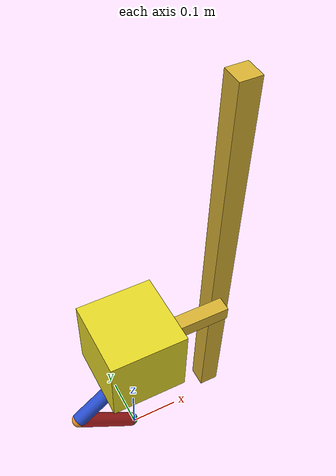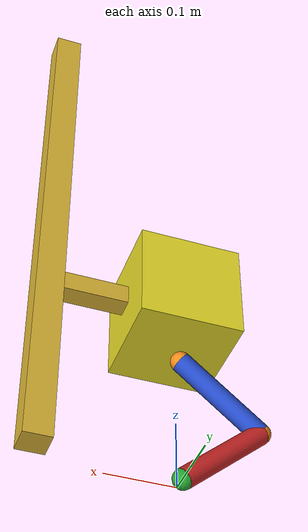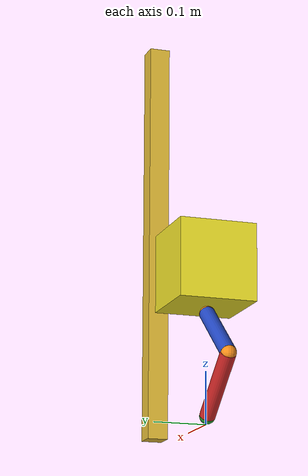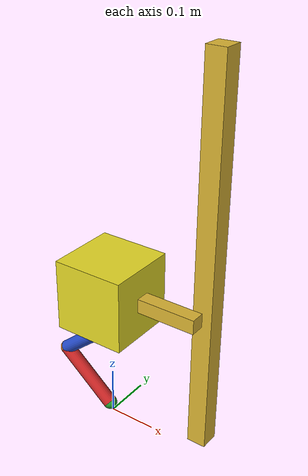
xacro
<?xml version="1.0"?>
<!--full-->
<robot name="my_robot" xmlns:xacro="http://ros.org/wiki/xacro">

  <xacro:property name="pi" value="3.1415926535897931" />
  <xacro:property name="theta1" value="40" />

  <link name="world"/>

  <joint name="base_joint" type="fixed">
    <parent link="world"/>
    <child link="base_link"/>
  </joint>

  <link name="base_link">
    <inertial>
      <mass value="10"/>
      <origin xyz="0.2 0.035 0.4" rpy="0 0 0"/>
      <inertia ixx="1.0" ixy="0.0" ixz="0.0" iyy="1.0" iyz="0.0" izz="1.0"/>
    </inertial>
    <visual>
      <origin xyz="0.2 0.035 0.4" rpy="0 0 0"/>
      <geometry>
        <box size="0.04 0.04 0.8"/>
      </geometry>
    </visual>
    <collision>
      <origin xyz="0.2 0.035 0.4" rpy="0 0 0"/>
      <geometry>
        <box size="0.04 0.04 0.8"/>
      </geometry>
    </collision>
  </link>
  <gazebo reference="base_link">
    <selfCollide>true</selfCollide>
    <material>Gazebo/Gold</material>
  </gazebo>

  <joint name="guide_joint" type="prismatic">
    <parent link="base_link"/>
    <child link="guide_link"/>
    <limit upper="0.5" lower="0.0" effort="0" velocity="100"/>
    <origin xyz="0.2 0 ${0.15*2*sin(radians(theta1))+0.03+0.075}" rpy="0 ${-90*pi/180} 0"/>
    <dynamics damping="0.1"/>
  </joint>
  <transmission name="guide_trans">
    <type>transmission_interface/SimpleTransmission</type>
    <joint name="guide_joint">
      <hardwareInterface>hardware_interface/EffortJointInterface</hardwareInterface>
    </joint>
    <actuator name="guide_motor">
       <hardwareInterface>hardware_interface/EffortJointInterface</hardwareInterface>
       <mechanismReduction>1</mechanismReduction>
    </actuator>
  </transmission>
  <gazebo reference="guide_joint">
    <provideFeedback>true</provideFeedback>
    <turnGravityOff>false</turnGravityOff>
  </gazebo>

  <link name="guide_link">
    <inertial>
      <mass value="0.001"/>
      <origin xyz="0 0 0.0625" rpy="0 ${90*pi/180} 0"/>
      <inertia ixx="0.001" ixy="0.0" ixz="0.0" iyy="0.001" iyz="0.0" izz="0.001"/>
    </inertial>
    <visual>
      <origin xyz="0 0 0.0625" rpy="0 ${90*pi/180} 0"/>
      <geometry>
        <box size="0.125 0.03 0.03"/>
      </geometry>
    </visual>
    <collision>
      <origin xyz="0 0 0.0625" rpy="0 ${90*pi/180} 0"/>
      <geometry>
        <box size="0.125 0.03 0.03"/>
      </geometry>
    </collision>
  </link>
  <gazebo reference="guide_link">
    <selfCollide>true</selfCollide>
    <material>Gazebo/Gold</material>
  </gazebo>

  <joint name="hashida_joint" type="fixed">
    <parent link="guide_link"/>
    <child link="hashida_box"/>
  </joint>

  <link name="hashida_box">
    <inertial>
      <mass value="5.5"/>
      <origin xyz="0 0 0.2" rpy="0 0 0"/>
      <inertia ixx="1.0" ixy="0.0" ixz="0.0" iyy="1.0" iyz="0.0" izz="1.0"/>
    </inertial>
    <visual>
      <origin xyz="0 0 0.2" rpy="0 0 0"/>
      <geometry>
        <box size="0.15 0.15 0.15"/>
      </geometry>
    </visual>
    <collision>
      <origin xyz="0 0 0.2" rpy="0 0 0"/>
      <geometry>
        <box size="0.15 0.15 0.15"/>
      </geometry>
    </collision>
  </link>
  <gazebo reference="hashida_box">
    <selfCollide>true</selfCollide>
    <material>Gazebo/Yellow</material>
  </gazebo>

  <joint name="arm2_roll_link_joint" type="fixed">
    <parent link="hashida_box"/>
    <child link="arm2_roll_link"/>
  </joint>

  <link name="arm2_roll_link">
    <inertial>
      <mass value="0.001"/>
      <origin xyz="-0.09 0 0.208819" rpy="0 0 0"/>
      <inertia ixx="0.001" ixy="0.0" ixz="0.0" iyy="0.001" iyz="0.0" izz="0.001"/>
    </inertial>
    <visual>
      <origin xyz="-0.09 0 0.208819" rpy="0 0 0"/>
      <geometry>
        <sphere radius="0.015"/>
      </geometry>
    </visual>
    <collision>
      <origin xyz="-0.09 0 0.208819" rpy="0 0 0"/>
      <geometry>
        <sphere radius="0.015"/>
      </geometry>
    </collision>
  </link>
  <gazebo reference="arm2_roll_link">
    <material>Gazebo/Orange</material>
  </gazebo>

  <joint name="arm2_roll_joint" type="revolute">
    <parent link="arm2_roll_link"/>
    <child link="arm2_pitch_link"/>
    <limit upper="${0*pi/180}" lower="${-0*pi/180}" effort="100" velocity="100"/>
    <axis xyz="0 0 1"/>
    <origin xyz="-0.09 0 0.208819" rpy="0 0 0"/>
    <dynamics damping="0.1"/>
  </joint>
  <transmission name="arm2_roll_trans">
    <type>transmission_interface/SimpleTransmission</type>
    <joint name="arm2_roll_joint">
      <hardwareInterface>hardware_interface/EffortJointInterface</hardwareInterface>
    </joint>
    <actuator name="arm2_roll_motor">
       <hardwareInterface>hardware_interface/EffortJointInterface</hardwareInterface>
       <mechanismReduction>1</mechanismReduction>
    </actuator>
  </transmission>
  <gazebo reference="arm2_roll_joint">
    <provideFeedback>true</provideFeedback>
    <turnGravityOff>false</turnGravityOff>
  </gazebo>

  <link name="arm2_pitch_link">
    <inertial>
      <mass value="0.001"/>
      <origin xyz="0 0 0" rpy="0 0 0"/>
      <inertia ixx="0.001" ixy="0.0" ixz="0.0" iyy="0.001" iyz="0.0" izz="0.001"/>
    </inertial>
    <visual>
      <origin xyz="0 0 0" rpy="0 0 0"/>
      <geometry>
        <sphere radius="0.015"/>
      </geometry>
    </visual>
    <collision>
      <origin xyz="0 0 0" rpy="0 0 0"/>
      <geometry>
        <sphere radius="0.015"/>
      </geometry>
    </collision>
  </link>
  <gazebo reference="arm2_pitch_link">
    <material>Gazebo/Orange</material>
  </gazebo>

  <joint name="arm2_pitch_joint" type="revolute">
    <parent link="arm2_pitch_link"/>
    <child link="arm2_link"/>
    <limit upper="0.0" lower="${-40*pi/180}" effort="100" velocity="100"/>
    <axis xyz="0 1 0"/>
    <origin xyz="0 0 0" rpy="0 0 0"/>
    <dynamics damping="0.1"/>
  </joint>
  <transmission name="arm2_pitch_trans">
    <type>transmission_interface/SimpleTransmission</type>
    <joint name="arm2_pitch_joint">
      <hardwareInterface>hardware_interface/EffortJointInterface</hardwareInterface>
    </joint>
    <actuator name="arm2_pitch_motor">
       <hardwareInterface>hardware_interface/EffortJointInterface</hardwareInterface>
       <mechanismReduction>1</mechanismReduction>
    </actuator>
  </transmission>
  <gazebo reference="arm2_pitch_joint">
    <provideFeedback>true</provideFeedback>
    <turnGravityOff>false</turnGravityOff>
  </gazebo>

  <link name="arm2_link">
    <inertial>
      <mass value="0.65"/>
      <origin xyz="-${0.15*0.5*sin(radians(theta1))} 0 ${0.15*0.5*cos(radians(theta1))}" rpy="0 -${theta1*pi/180} 0"/>
      <inertia ixx="0.01" ixy="0.0" ixz="0.0" iyy="0.01" iyz="0.0" izz="0.01"/>
    </inertial>
    <visual>
      <origin xyz="-${0.15*0.5*sin(radians(theta1))} 0 ${0.15*0.5*cos(radians(theta1))}" rpy="0 -${theta1*pi/180} 0"/>
      <geometry>
        <cylinder length="0.15" radius="0.015"/>
      </geometry>
    </visual>
    <collision>
      <origin xyz="-${0.15*0.5*sin(radians(theta1))} 0 ${0.15*0.5*cos(radians(theta1))}" rpy="0 -${theta1*pi/180} 0"/>
      <geometry>
        <cylinder length="0.15" radius="0.015"/>
      </geometry>
    </collision>
  </link>
  <gazebo reference="arm2_link">
    <material>Gazebo/Blue</material>
  </gazebo>

  <joint name="arm1_joint" type="revolute">
    <parent link="arm2_link"/>
    <child link="arm1_joint_link"/>
    <limit upper="${80*pi/180}" lower="0.0" effort="100" velocity="100"/>
    <axis xyz="0 1 0"/>
    <origin xyz="-${0.15*sin(radians(theta1))} 0 ${0.15*cos(radians(theta1))}" rpy="0 0 0"/>
    <dynamics damping="0.1"/>
  </joint>
  <transmission name="arm1_trans">
    <type>transmission_interface/SimpleTransmission</type>
    <joint name="arm1_joint">
      <hardwareInterface>hardware_interface/EffortJointInterface</hardwareInterface>
    </joint>
    <actuator name="arm1_motor">
       <hardwareInterface>hardware_interface/EffortJointInterface</hardwareInterface>
       <mechanismReduction>1</mechanismReduction>
    </actuator>
  </transmission>
  <gazebo reference="arm1_joint">
    <provideFeedback>true</provideFeedback>
    <turnGravityOff>false</turnGravityOff>
  </gazebo>

  <link name="arm1_joint_link">
    <inertial>
      <origin xyz="0 0 0" rpy="${90*pi/180} 0 0"/>
      <mass value="0.001"/>
      <inertia ixx="0.001" ixy="0.0" ixz="0.0" iyy="0.001" iyz="0.0" izz="0.001"/>
    </inertial>
    <visual>
      <origin xyz="0 0 0" rpy="${90*pi/180} 0 0"/>
      <geometry>
        <sphere radius="0.015"/>
      </geometry>
    </visual>
    <collision>
      <origin xyz="0 0 0" rpy="${90*pi/180} 0 0 "/>
      <geometry>
        <sphere radius="0.015"/>
      </geometry>
    </collision>
  </link>
  <gazebo reference="arm1_joint_link">
    <material>Gazebo/Orange</material>
  </gazebo>

  <joint name="arm1_joint_link_joint" type="fixed">
    <parent link="arm1_joint_link"/>
    <child link="arm1_link"/>
  </joint>

  <link name="arm1_link">
    <inertial>
      <origin xyz="-${0.15*0.5*sin(radians(theta1))} 0 -${0.15*0.5*cos(radians(theta1))}" rpy="0 ${theta1*pi/180} 0"/>
      <mass value="0.172"/>
      <inertia ixx="0.01" ixy="0.0" ixz="0.0" iyy="0.01" iyz="0.0" izz="0.01"/>
    </inertial>
    <visual>
      <origin xyz="-${0.15*0.5*sin(radians(theta1))} 0 -${0.15*0.5*cos(radians(theta1))}" rpy="0 ${theta1*pi/180} 0"/>
      <geometry>
        <cylinder length="0.15" radius="0.015"/>
      </geometry>
    </visual>
    <collision>
      <origin xyz="-${0.15*0.5*sin(radians(theta1))} 0 -${0.15*0.5*cos(radians(theta1))}" rpy="0 ${theta1*pi/180} 0"/>
      <geometry>
        <cylinder length="0.15" radius="0.015"/>
      </geometry>
    </collision>
  </link>
  <gazebo reference="arm1_link">
    <material>Gazebo/Red</material>
  </gazebo>

   <joint name="arm0_joint" type="fixed">
    <parent link="arm1_link"/>
    <child link="arm0_link"/>
  </joint>

  <link name="arm0_link">
    <inertial>
      <mass value="0.001"/>
      <origin xyz="-${0.15*sin(radians(theta1))} 0 -${0.15*cos(radians(theta1))}" rpy="0 0 0"/>
      <inertia ixx="0.001" ixy="0.0" ixz="0.0" iyy="0.001" iyz="0.0" izz="0.001"/>
    </inertial>
    <visual>
      <origin xyz="-${0.15*sin(radians(theta1))} 0 -${0.15*cos(radians(theta1))}" rpy="0 0 0"/>
      <geometry>
        <sphere radius="0.015"/>
      </geometry>
    </visual>
    <collision>
      <origin xyz="-${0.15*sin(radians(theta1))} 0 -${0.15*cos(radians(theta1))}" rpy="0 0 0"/>
      <geometry>
        <sphere radius="0.015"/>
      </geometry>
    </collision>
  </link>
  <gazebo reference="arm0_link">
    <mu1>1</mu1>
    <mu2>1</mu2>
    <selfCollide>true</selfCollide>
    <material>Gazebo/Green</material>
  </gazebo>

  <gazebo>
    <plugin name="ft_sensor" filename="libgazebo_ros_ft_sensor.so">
      <updateRate>100.0</updateRate>
      <topicName>arm1_sensor/raw</topicName>
      <jointName>arm1_joint</jointName>
      <gaussianNoise>0.0</gaussianNoise>
    </plugin>
    <plugin name="ft_sensor" filename="libgazebo_ros_ft_sensor.so">
      <updateRate>100.0</updateRate>
      <topicName>arm2_sensor/raw</topicName>
      <jointName>arm2_joint</jointName>
      <gaussianNoise>0.0</gaussianNoise>
    </plugin>
    <plugin name="gazebo_ros_control" filename="libgazebo_ros_control.so">
      <robotNamespace>/my_robot</robotNamespace>
      <robotSimType>gazebo_ros_control/DefaultRobotHWSim</robotSimType>
    </plugin>
  </gazebo>

</robot>
